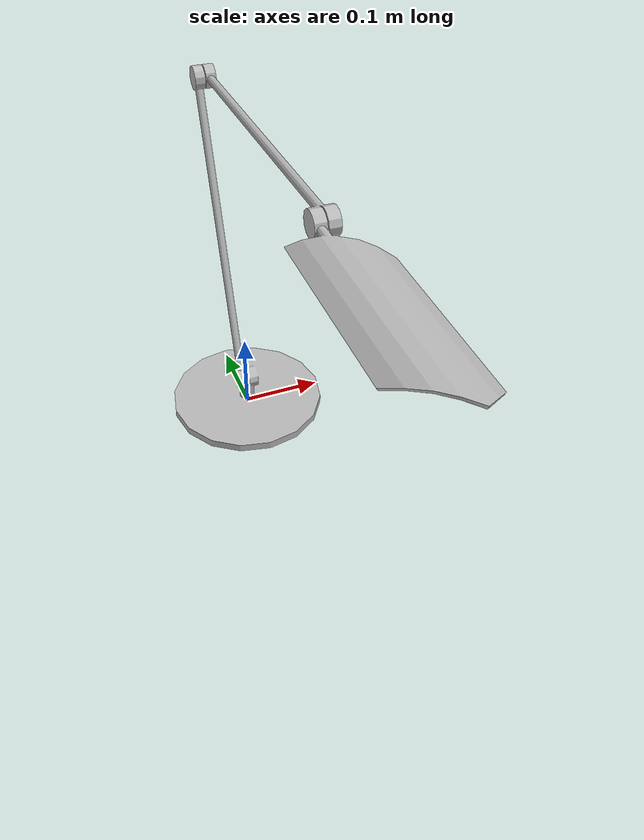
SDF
<sdf version="1.4">
	<model name="desk_lamp">
		<link name="link">
			<visual name="mesh">
				<geometry>
					<mesh>
						<uri>model://meshes/desk_lamp.dae</uri>
					</mesh>
				</geometry>
			</visual>
		</link>
	</model>
</sdf>
